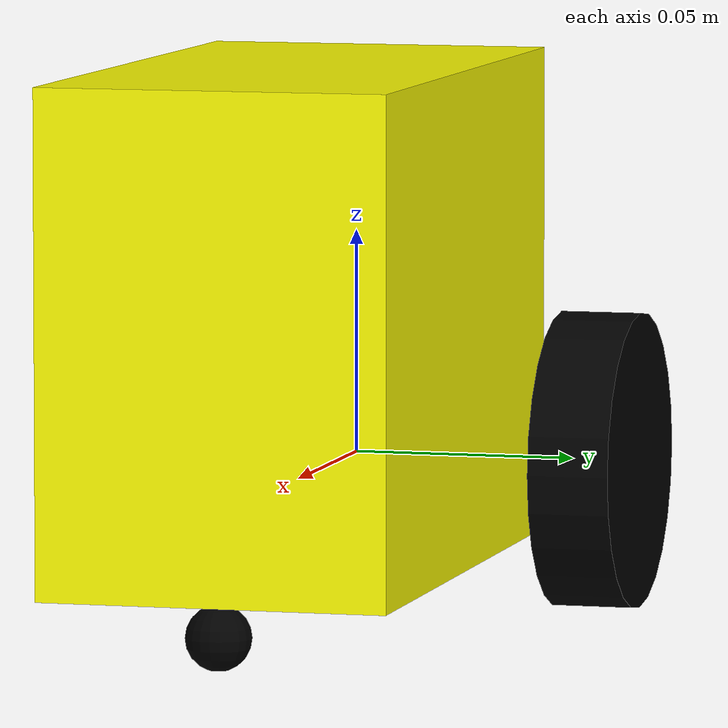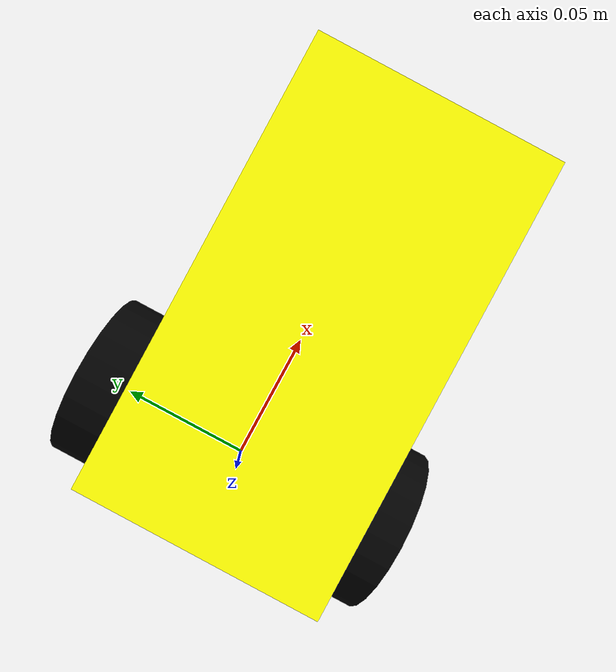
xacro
<?xml version="1.0"?>

<robot xmlns:xacro="http://www.ros.org/wiki/xacro" name="nanobot">

  <xacro:include filename="inertial_macros.xacro" />

  <!-- Body dimensions -->
  <xacro:property name="body_x_dim" value="0.1425" />
  <xacro:property name="body_y_dim" value="0.0765" />
  <xacro:property name="body_z_dim" value="0.109" />
  <xacro:property name="body_x_offset" value="0.02075" />
  <xacro:property name="body_z_offset" value="0.01875" />

  <!-- Wheel dimensions -->
  <xacro:property name="wheel_radius" value="0.033" /> <!-- 66mm diameter -->
  <xacro:property name="wheel_length" value="0.018" />
  <xacro:property name="wheel_separation_from_body" value="0.009" />
  <xacro:property name="caster_wheel_radius" value="${(wheel_radius - body_z_offset)/2}" />

  <!-- Robot body and wheel mass -->
  <xacro:property name="body_mass" value="0.941" />
  <xacro:property name="wheel_mass" value="0.028" />
  <xacro:property name="caster_wheel_mass" value="0.041" />

  <!-- Moments of intertia of the wheel -->
  <xacro:macro name="inertia_wheel">
    <xacro:inertial_cylinder mass="${wheel_mass}" length="${wheel_length}"
      radius="${wheel_radius}">
      <origin xyz="0 0 0" rpy="0 0 0" />
    </xacro:inertial_cylinder>
  </xacro:macro>

  <!-- Moments of intertia of the caster wheel -->
  <xacro:macro name="inertia_caster_wheel">
    <xacro:inertial_sphere mass="${caster_wheel_mass}" radius="${caster_wheel_radius}">
      <origin xyz="0 0 0" rpy="0 0 0" />
    </xacro:inertial_sphere>
  </xacro:macro>

  <!-- Materials -->

  <material name="yellow">
    <color rgba="1 1 0 1" />
  </material>

  <material name="black">
    <color rgba="0 0 0 1" />
  </material>

  <material name="red">
    <color rgba="1 0 0 1" />
  </material>

  <!-- Links and joints definition -->

  <!-- Base link -->

  <link name="base_link"></link>

  <!-- Base footprint -->

  <joint name="base_footprint_joint" type="fixed">
    <parent link="base_link"/>
    <child link="base_footprint"/>
    <origin xyz="0 0 0" rpy="0 0 0"/>
  </joint>

  <link name="base_footprint">
  </link>

  <!-- Body -->

  <joint name="body_joint" type="fixed">
    <parent link="base_link" />
    <child link="body_link" />
    <origin xyz="-${body_x_offset} 0 -${body_z_offset}"/>
  </joint>

  <link name="body_link">
    <visual>
      <origin xyz="${body_x_dim/2} 0 ${body_z_dim/2}" rpy="0 0 0" />
      <geometry>
        <box size="${body_x_dim} ${body_y_dim} ${body_z_dim}" />
      </geometry>
      <material name="yellow" />
    </visual>
    <collision>
      <origin xyz="${body_x_dim/2} 0 ${body_z_dim/2}" rpy="0 0 0" />
      <geometry>
        <box size="${body_x_dim} ${body_y_dim} ${body_z_dim}" />
      </geometry>
    </collision>
    <xacro:inertial_box mass="${body_mass}" x="${body_x_dim}" y="${body_y_dim}"
      z="${body_z_dim}">
      <origin xyz="${body_x_dim/2} 0 ${body_z_dim/2}" rpy="0 0 0" />
    </xacro:inertial_box>
  </link>

  <gazebo reference="body_link">
    <material>Gazebo/Yellow</material>
  </gazebo>

  <!-- Left wheel -->

  <joint name="left_wheel_joint" type="continuous">
    <parent link="base_link" />
    <child link="left_wheel_link" />
    <origin
      xyz="0 ${body_y_dim/2 + wheel_length/2 + wheel_separation_from_body} 0"
      rpy="-${pi/2} 0 0" />
    <axis xyz="0 0 1" />
    <limit effort="100" velocity="100" />
  </joint>

  <link name="left_wheel_link">
    <visual>
      <geometry>
        <cylinder length="${wheel_length}" radius="${wheel_radius}" />
      </geometry>
      <material name="black" />
    </visual>
    <collision>
      <geometry>
        <sphere radius="${wheel_radius}" />
      </geometry>
    </collision>
    <xacro:inertia_wheel />
  </link>

  <gazebo reference="left_wheel_link">
    <material>Gazebo/Black</material>
  </gazebo>

  <!-- Right wheel -->

  <joint name="right_wheel_joint" type="continuous">
    <parent link="base_link" />
    <child link="right_wheel_link" />
    <origin
      xyz="0 -${body_y_dim/2 + wheel_length/2 + wheel_separation_from_body} 0"
      rpy="${pi/2} 0 0" />
    <axis xyz="0 0 -1" />
    <limit effort="100" velocity="100" />
  </joint>

  <link name="right_wheel_link">
    <visual>
      <geometry>
        <cylinder length="${wheel_length}" radius="${wheel_radius}" />
      </geometry>
      <material name="black" />
    </visual>
    <collision>
      <geometry>
        <sphere radius="${wheel_radius}" />
      </geometry>
    </collision>
    <xacro:inertia_wheel />
  </link>

  <gazebo reference="right_wheel_link">
    <material>Gazebo/Black</material>
  </gazebo>

  <!-- Caster wheel -->

  <joint name="caster_wheel_joint" type="fixed">
      <parent link="body_link"/>
      <child link="caster_wheel_link"/>
      <origin
        xyz="${body_x_dim - caster_wheel_radius} 0 -${caster_wheel_radius}"
        rpy="0 0 0"/>
  </joint>

  <link name="caster_wheel_link">
    <visual>
      <geometry>
        <sphere radius="${caster_wheel_radius}" />
      </geometry>
      <material name="black"/>
    </visual>
    <collision>
      <geometry>
        <sphere radius="${caster_wheel_radius}" />
      </geometry>
    </collision>
    <xacro:inertia_caster_wheel />
  </link>

  <gazebo reference="caster_wheel_link">
    <material>Gazebo/Black</material>
    <mu1 value="0.001"/>
    <mu2 value="0.001"/>
  </gazebo>

</robot>

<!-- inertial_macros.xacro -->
<robot xmlns:xacro="http://www.ros.org/wiki/xacro">

  <!-- Specify some standard inertial calculations
  https://en.wikipedia.org/wiki/List_of_moments_of_inertia -->
  <!-- These make use of xacro's mathematical functionality -->

  <xacro:macro name="inertial_sphere" params="mass radius *origin">
    <inertial>
      <xacro:insert_block name="origin" />
      <mass value="${mass}" />
      <inertia ixx="${(2/5) * mass * (radius*radius)}" ixy="0.0" ixz="0.0"
        iyy="${(2/5) * mass * (radius*radius)}" iyz="0.0"
        izz="${(2/5) * mass * (radius*radius)}" />
    </inertial>
  </xacro:macro>

  <xacro:macro name="inertial_box" params="mass x y z *origin">
    <inertial>
      <xacro:insert_block name="origin" />
      <mass value="${mass}" />
      <inertia ixx="${(1/12) * mass * (y*y+z*z)}" ixy="0.0" ixz="0.0"
        iyy="${(1/12) * mass * (x*x+z*z)}" iyz="0.0"
        izz="${(1/12) * mass * (x*x+y*y)}" />
    </inertial>
  </xacro:macro>

  <xacro:macro name="inertial_cylinder" params="mass length radius *origin">
    <inertial>
      <xacro:insert_block name="origin" />
      <mass value="${mass}" />
      <inertia ixx="${(1/12) * mass * (3*radius*radius + length*length)}" ixy="0.0" ixz="0.0"
        iyy="${(1/12) * mass * (3*radius*radius + length*length)}" iyz="0.0"
        izz="${(1/2) * mass * (radius*radius)}" />
    </inertial>
  </xacro:macro>

</robot>
